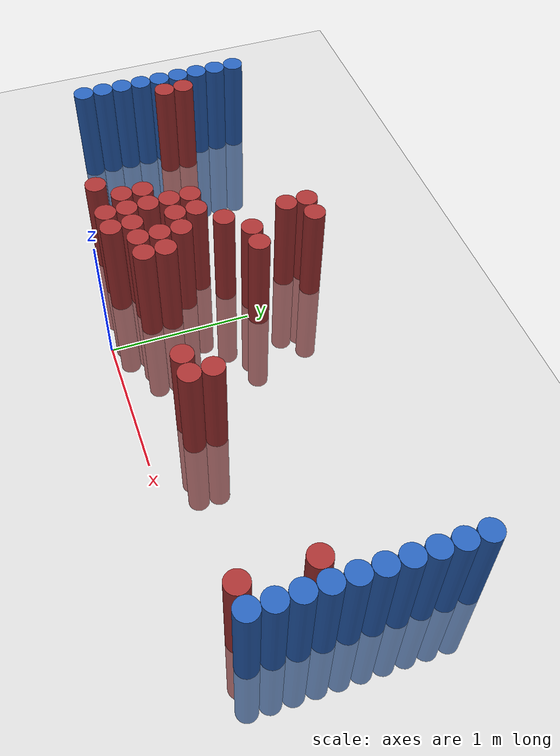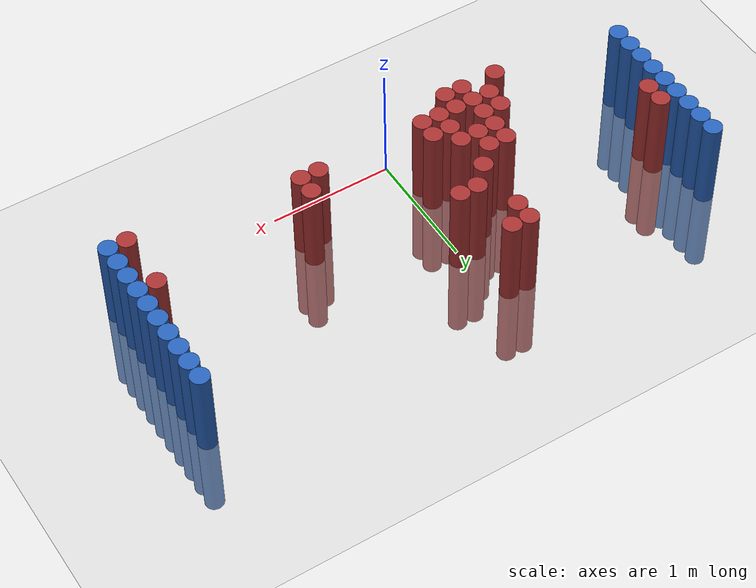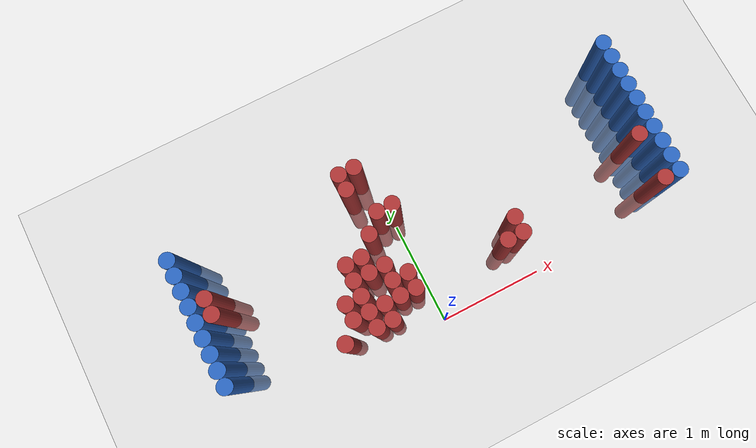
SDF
<sdf version="1.6">
 <world name="default">
  <model name="ground_plane">
   <static>1</static>
   <link name="link">
    <collision name="collision">
     <geometry><plane><normal>0 0 1</normal><size>100 100</size></plane></geometry>
     <surface><friction><ode><mu>100</mu><mu2>50</mu2></ode></friction></surface>
    </collision>
    <visual name="visual">
     <cast_shadows>0</cast_shadows>
     <geometry><plane><normal>0 0 1</normal><size>100 100</size></plane></geometry>
     <material>
      <script><uri>file://media/materials/scripts/gazebo.material</uri><name>Gazebo/Grey</name></script>
     </material>
    </visual>
   </link>
  </model>
  <model name="unit_cylinder_97">
   <static>1</static>
   <pose>-1.925000 0.325000 0.000000 0.000000 0.000000 0.000000</pose>
   <link name="link">
    <inertial>
     <mass>1</mass>
     <inertia><ixx>0.145833</ixx><ixy>0</ixy><ixz>0</ixz><iyy>0.145833</iyy><iyz>0</iyz><izz>0.125</izz></inertia>
    </inertial>
    <collision name="collision">
     <geometry><cylinder><radius>0.075000</radius><length>1.5</length></cylinder></geometry>
    </collision>
    <visual name="visual">
     <geometry><cylinder><radius>0.075000</radius><length>1.5</length></cylinder></geometry>
     <material>
      <ambient>0.152000 0.379000 0.720000 1</ambient>
      <diffuse>0.152000 0.379000 0.720000 1</diffuse>
     </material>
     <material>
      <script><name>Gazebo/Grey</name><uri>file://media/materials/scripts/gazebo.material</uri></script>
     </material>
    </visual>
   </link>
  </model>
  <model name="unit_cylinder_98">
   <static>1</static>
   <pose>-1.925000 0.475000 0.000000 0.000000 0.000000 0.000000</pose>
   <link name="link">
    <inertial>
     <mass>1</mass>
     <inertia><ixx>0.145833</ixx><ixy>0</ixy><ixz>0</ixz><iyy>0.145833</iyy><iyz>0</iyz><izz>0.125</izz></inertia>
    </inertial>
    <collision name="collision">
     <geometry><cylinder><radius>0.075000</radius><length>1.5</length></cylinder></geometry>
    </collision>
    <visual name="visual">
     <geometry><cylinder><radius>0.075000</radius><length>1.5</length></cylinder></geometry>
     <material>
      <ambient>0.152000 0.379000 0.720000 1</ambient>
      <diffuse>0.152000 0.379000 0.720000 1</diffuse>
     </material>
     <material>
      <script><name>Gazebo/Grey</name><uri>file://media/materials/scripts/gazebo.material</uri></script>
     </material>
    </visual>
   </link>
  </model>
  <model name="unit_cylinder_99">
   <static>1</static>
   <pose>-1.925000 0.625000 0.000000 0.000000 0.000000 0.000000</pose>
   <link name="link">
    <inertial>
     <mass>1</mass>
     <inertia><ixx>0.145833</ixx><ixy>0</ixy><ixz>0</ixz><iyy>0.145833</iyy><iyz>0</iyz><izz>0.125</izz></inertia>
    </inertial>
    <collision name="collision">
     <geometry><cylinder><radius>0.075000</radius><length>1.5</length></cylinder></geometry>
    </collision>
    <visual name="visual">
     <geometry><cylinder><radius>0.075000</radius><length>1.5</length></cylinder></geometry>
     <material>
      <ambient>0.152000 0.379000 0.720000 1</ambient>
      <diffuse>0.152000 0.379000 0.720000 1</diffuse>
     </material>
     <material>
      <script><name>Gazebo/Grey</name><uri>file://media/materials/scripts/gazebo.material</uri></script>
     </material>
    </visual>
   </link>
  </model>
  <model name="unit_cylinder_100">
   <static>1</static>
   <pose>-1.925000 0.775000 0.000000 0.000000 0.000000 0.000000</pose>
   <link name="link">
    <inertial>
     <mass>1</mass>
     <inertia><ixx>0.145833</ixx><ixy>0</ixy><ixz>0</ixz><iyy>0.145833</iyy><iyz>0</iyz><izz>0.125</izz></inertia>
    </inertial>
    <collision name="collision">
     <geometry><cylinder><radius>0.075000</radius><length>1.5</length></cylinder></geometry>
    </collision>
    <visual name="visual">
     <geometry><cylinder><radius>0.075000</radius><length>1.5</length></cylinder></geometry>
     <material>
      <ambient>0.152000 0.379000 0.720000 1</ambient>
      <diffuse>0.152000 0.379000 0.720000 1</diffuse>
     </material>
     <material>
      <script><name>Gazebo/Grey</name><uri>file://media/materials/scripts/gazebo.material</uri></script>
     </material>
    </visual>
   </link>
  </model>
  <model name="unit_cylinder_101">
   <static>1</static>
   <pose>-1.925000 0.925000 0.000000 0.000000 0.000000 0.000000</pose>
   <link name="link">
    <inertial>
     <mass>1</mass>
     <inertia><ixx>0.145833</ixx><ixy>0</ixy><ixz>0</ixz><iyy>0.145833</iyy><iyz>0</iyz><izz>0.125</izz></inertia>
    </inertial>
    <collision name="collision">
     <geometry><cylinder><radius>0.075000</radius><length>1.5</length></cylinder></geometry>
    </collision>
    <visual name="visual">
     <geometry><cylinder><radius>0.075000</radius><length>1.5</length></cylinder></geometry>
     <material>
      <ambient>0.152000 0.379000 0.720000 1</ambient>
      <diffuse>0.152000 0.379000 0.720000 1</diffuse>
     </material>
     <material>
      <script><name>Gazebo/Grey</name><uri>file://media/materials/scripts/gazebo.material</uri></script>
     </material>
    </visual>
   </link>
  </model>
  <model name="unit_cylinder_102">
   <static>1</static>
   <pose>-1.925000 1.075000 0.000000 0.000000 0.000000 0.000000</pose>
   <link name="link">
    <inertial>
     <mass>1</mass>
     <inertia><ixx>0.145833</ixx><ixy>0</ixy><ixz>0</ixz><iyy>0.145833</iyy><iyz>0</iyz><izz>0.125</izz></inertia>
    </inertial>
    <collision name="collision">
     <geometry><cylinder><radius>0.075000</radius><length>1.5</length></cylinder></geometry>
    </collision>
    <visual name="visual">
     <geometry><cylinder><radius>0.075000</radius><length>1.5</length></cylinder></geometry>
     <material>
      <ambient>0.152000 0.379000 0.720000 1</ambient>
      <diffuse>0.152000 0.379000 0.720000 1</diffuse>
     </material>
     <material>
      <script><name>Gazebo/Grey</name><uri>file://media/materials/scripts/gazebo.material</uri></script>
     </material>
    </visual>
   </link>
  </model>
  <model name="unit_cylinder_103">
   <static>1</static>
   <pose>-1.925000 1.225000 0.000000 0.000000 0.000000 0.000000</pose>
   <link name="link">
    <inertial>
     <mass>1</mass>
     <inertia><ixx>0.145833</ixx><ixy>0</ixy><ixz>0</ixz><iyy>0.145833</iyy><iyz>0</iyz><izz>0.125</izz></inertia>
    </inertial>
    <collision name="collision">
     <geometry><cylinder><radius>0.075000</radius><length>1.5</length></cylinder></geometry>
    </collision>
    <visual name="visual">
     <geometry><cylinder><radius>0.075000</radius><length>1.5</length></cylinder></geometry>
     <material>
      <ambient>0.152000 0.379000 0.720000 1</ambient>
      <diffuse>0.152000 0.379000 0.720000 1</diffuse>
     </material>
     <material>
      <script><name>Gazebo/Grey</name><uri>file://media/materials/scripts/gazebo.material</uri></script>
     </material>
    </visual>
   </link>
  </model>
  <model name="unit_cylinder_104">
   <static>1</static>
   <pose>-1.925000 1.375000 0.000000 0.000000 0.000000 0.000000</pose>
   <link name="link">
    <inertial>
     <mass>1</mass>
     <inertia><ixx>0.145833</ixx><ixy>0</ixy><ixz>0</ixz><iyy>0.145833</iyy><iyz>0</iyz><izz>0.125</izz></inertia>
    </inertial>
    <collision name="collision">
     <geometry><cylinder><radius>0.075000</radius><length>1.5</length></cylinder></geometry>
    </collision>
    <visual name="visual">
     <geometry><cylinder><radius>0.075000</radius><length>1.5</length></cylinder></geometry>
     <material>
      <ambient>0.152000 0.379000 0.720000 1</ambient>
      <diffuse>0.152000 0.379000 0.720000 1</diffuse>
     </material>
     <material>
      <script><name>Gazebo/Grey</name><uri>file://media/materials/scripts/gazebo.material</uri></script>
     </material>
    </visual>
   </link>
  </model>
  <model name="unit_cylinder_105">
   <static>1</static>
   <pose>-1.925000 1.525000 0.000000 0.000000 0.000000 0.000000</pose>
   <link name="link">
    <inertial>
     <mass>1</mass>
     <inertia><ixx>0.145833</ixx><ixy>0</ixy><ixz>0</ixz><iyy>0.145833</iyy><iyz>0</iyz><izz>0.125</izz></inertia>
    </inertial>
    <collision name="collision">
     <geometry><cylinder><radius>0.075000</radius><length>1.5</length></cylinder></geometry>
    </collision>
    <visual name="visual">
     <geometry><cylinder><radius>0.075000</radius><length>1.5</length></cylinder></geometry>
     <material>
      <ambient>0.152000 0.379000 0.720000 1</ambient>
      <diffuse>0.152000 0.379000 0.720000 1</diffuse>
     </material>
     <material>
      <script><name>Gazebo/Grey</name><uri>file://media/materials/scripts/gazebo.material</uri></script>
     </material>
    </visual>
   </link>
  </model>
  <model name="unit_cylinder_127">
   <static>1</static>
   <pose>-1.775000 0.925000 0.000000 0.000000 0.000000 0.000000</pose>
   <link name="link">
    <inertial>
     <mass>1</mass>
     <inertia><ixx>0.145833</ixx><ixy>0</ixy><ixz>0</ixz><iyy>0.145833</iyy><iyz>0</iyz><izz>0.125</izz></inertia>
    </inertial>
    <collision name="collision">
     <geometry><cylinder><radius>0.075000</radius><length>1.5</length></cylinder></geometry>
    </collision>
    <visual name="visual">
     <geometry><cylinder><radius>0.075000</radius><length>1.5</length></cylinder></geometry>
     <material>
      <ambient>0.648000 0.192000 0.192000 1</ambient>
      <diffuse>0.648000 0.192000 0.192000 1</diffuse>
     </material>
     <material>
      <script><name>Gazebo/Grey</name><uri>file://media/materials/scripts/gazebo.material</uri></script>
     </material>
    </visual>
   </link>
  </model>
  <model name="unit_cylinder_128">
   <static>1</static>
   <pose>-1.775000 1.075000 0.000000 0.000000 0.000000 0.000000</pose>
   <link name="link">
    <inertial>
     <mass>1</mass>
     <inertia><ixx>0.145833</ixx><ixy>0</ixy><ixz>0</ixz><iyy>0.145833</iyy><iyz>0</iyz><izz>0.125</izz></inertia>
    </inertial>
    <collision name="collision">
     <geometry><cylinder><radius>0.075000</radius><length>1.5</length></cylinder></geometry>
    </collision>
    <visual name="visual">
     <geometry><cylinder><radius>0.075000</radius><length>1.5</length></cylinder></geometry>
     <material>
      <ambient>0.648000 0.192000 0.192000 1</ambient>
      <diffuse>0.648000 0.192000 0.192000 1</diffuse>
     </material>
     <material>
      <script><name>Gazebo/Grey</name><uri>file://media/materials/scripts/gazebo.material</uri></script>
     </material>
    </visual>
   </link>
  </model>
  <model name="unit_cylinder_156">
   <static>1</static>
   <pose>-0.875000 0.175000 0.000000 0.000000 0.000000 0.000000</pose>
   <link name="link">
    <inertial>
     <mass>1</mass>
     <inertia><ixx>0.145833</ixx><ixy>0</ixy><ixz>0</ixz><iyy>0.145833</iyy><iyz>0</iyz><izz>0.125</izz></inertia>
    </inertial>
    <collision name="collision">
     <geometry><cylinder><radius>0.075000</radius><length>1.5</length></cylinder></geometry>
    </collision>
    <visual name="visual">
     <geometry><cylinder><radius>0.075000</radius><length>1.5</length></cylinder></geometry>
     <material>
      <ambient>0.648000 0.192000 0.192000 1</ambient>
      <diffuse>0.648000 0.192000 0.192000 1</diffuse>
     </material>
     <material>
      <script><name>Gazebo/Grey</name><uri>file://media/materials/scripts/gazebo.material</uri></script>
     </material>
    </visual>
   </link>
  </model>
  <model name="unit_cylinder_159">
   <static>1</static>
   <pose>-0.725000 0.325000 0.000000 0.000000 0.000000 0.000000</pose>
   <link name="link">
    <inertial>
     <mass>1</mass>
     <inertia><ixx>0.145833</ixx><ixy>0</ixy><ixz>0</ixz><iyy>0.145833</iyy><iyz>0</iyz><izz>0.125</izz></inertia>
    </inertial>
    <collision name="collision">
     <geometry><cylinder><radius>0.075000</radius><length>1.5</length></cylinder></geometry>
    </collision>
    <visual name="visual">
     <geometry><cylinder><radius>0.075000</radius><length>1.5</length></cylinder></geometry>
     <material>
      <ambient>0.648000 0.192000 0.192000 1</ambient>
      <diffuse>0.648000 0.192000 0.192000 1</diffuse>
     </material>
     <material>
      <script><name>Gazebo/Grey</name><uri>file://media/materials/scripts/gazebo.material</uri></script>
     </material>
    </visual>
   </link>
  </model>
  <model name="unit_cylinder_160">
   <static>1</static>
   <pose>-0.725000 0.475000 0.000000 0.000000 0.000000 0.000000</pose>
   <link name="link">
    <inertial>
     <mass>1</mass>
     <inertia><ixx>0.145833</ixx><ixy>0</ixy><ixz>0</ixz><iyy>0.145833</iyy><iyz>0</iyz><izz>0.125</izz></inertia>
    </inertial>
    <collision name="collision">
     <geometry><cylinder><radius>0.075000</radius><length>1.5</length></cylinder></geometry>
    </collision>
    <visual name="visual">
     <geometry><cylinder><radius>0.075000</radius><length>1.5</length></cylinder></geometry>
     <material>
      <ambient>0.648000 0.192000 0.192000 1</ambient>
      <diffuse>0.648000 0.192000 0.192000 1</diffuse>
     </material>
     <material>
      <script><name>Gazebo/Grey</name><uri>file://media/materials/scripts/gazebo.material</uri></script>
     </material>
    </visual>
   </link>
  </model>
  <model name="unit_cylinder_163">
   <static>1</static>
   <pose>-0.575000 0.175000 0.000000 0.000000 0.000000 0.000000</pose>
   <link name="link">
    <inertial>
     <mass>1</mass>
     <inertia><ixx>0.145833</ixx><ixy>0</ixy><ixz>0</ixz><iyy>0.145833</iyy><iyz>0</iyz><izz>0.125</izz></inertia>
    </inertial>
    <collision name="collision">
     <geometry><cylinder><radius>0.075000</radius><length>1.5</length></cylinder></geometry>
    </collision>
    <visual name="visual">
     <geometry><cylinder><radius>0.075000</radius><length>1.5</length></cylinder></geometry>
     <material>
      <ambient>0.648000 0.192000 0.192000 1</ambient>
      <diffuse>0.648000 0.192000 0.192000 1</diffuse>
     </material>
     <material>
      <script><name>Gazebo/Grey</name><uri>file://media/materials/scripts/gazebo.material</uri></script>
     </material>
    </visual>
   </link>
  </model>
  <model name="unit_cylinder_164">
   <static>1</static>
   <pose>-0.575000 0.325000 0.000000 0.000000 0.000000 0.000000</pose>
   <link name="link">
    <inertial>
     <mass>1</mass>
     <inertia><ixx>0.145833</ixx><ixy>0</ixy><ixz>0</ixz><iyy>0.145833</iyy><iyz>0</iyz><izz>0.125</izz></inertia>
    </inertial>
    <collision name="collision">
     <geometry><cylinder><radius>0.075000</radius><length>1.5</length></cylinder></geometry>
    </collision>
    <visual name="visual">
     <geometry><cylinder><radius>0.075000</radius><length>1.5</length></cylinder></geometry>
     <material>
      <ambient>0.648000 0.192000 0.192000 1</ambient>
      <diffuse>0.648000 0.192000 0.192000 1</diffuse>
     </material>
     <material>
      <script><name>Gazebo/Grey</name><uri>file://media/materials/scripts/gazebo.material</uri></script>
     </material>
    </visual>
   </link>
  </model>
  <model name="unit_cylinder_165">
   <static>1</static>
   <pose>-0.575000 0.475000 0.000000 0.000000 0.000000 0.000000</pose>
   <link name="link">
    <inertial>
     <mass>1</mass>
     <inertia><ixx>0.145833</ixx><ixy>0</ixy><ixz>0</ixz><iyy>0.145833</iyy><iyz>0</iyz><izz>0.125</izz></inertia>
    </inertial>
    <collision name="collision">
     <geometry><cylinder><radius>0.075000</radius><length>1.5</length></cylinder></geometry>
    </collision>
    <visual name="visual">
     <geometry><cylinder><radius>0.075000</radius><length>1.5</length></cylinder></geometry>
     <material>
      <ambient>0.648000 0.192000 0.192000 1</ambient>
      <diffuse>0.648000 0.192000 0.192000 1</diffuse>
     </material>
     <material>
      <script><name>Gazebo/Grey</name><uri>file://media/materials/scripts/gazebo.material</uri></script>
     </material>
    </visual>
   </link>
  </model>
  <model name="unit_cylinder_166">
   <static>1</static>
   <pose>-0.575000 0.625000 0.000000 0.000000 0.000000 0.000000</pose>
   <link name="link">
    <inertial>
     <mass>1</mass>
     <inertia><ixx>0.145833</ixx><ixy>0</ixy><ixz>0</ixz><iyy>0.145833</iyy><iyz>0</iyz><izz>0.125</izz></inertia>
    </inertial>
    <collision name="collision">
     <geometry><cylinder><radius>0.075000</radius><length>1.5</length></cylinder></geometry>
    </collision>
    <visual name="visual">
     <geometry><cylinder><radius>0.075000</radius><length>1.5</length></cylinder></geometry>
     <material>
      <ambient>0.648000 0.192000 0.192000 1</ambient>
      <diffuse>0.648000 0.192000 0.192000 1</diffuse>
     </material>
     <material>
      <script><name>Gazebo/Grey</name><uri>file://media/materials/scripts/gazebo.material</uri></script>
     </material>
    </visual>
   </link>
  </model>
  <model name="unit_cylinder_167">
   <static>1</static>
   <pose>-0.575000 0.775000 0.000000 0.000000 0.000000 0.000000</pose>
   <link name="link">
    <inertial>
     <mass>1</mass>
     <inertia><ixx>0.145833</ixx><ixy>0</ixy><ixz>0</ixz><iyy>0.145833</iyy><iyz>0</iyz><izz>0.125</izz></inertia>
    </inertial>
    <collision name="collision">
     <geometry><cylinder><radius>0.075000</radius><length>1.5</length></cylinder></geometry>
    </collision>
    <visual name="visual">
     <geometry><cylinder><radius>0.075000</radius><length>1.5</length></cylinder></geometry>
     <material>
      <ambient>0.648000 0.192000 0.192000 1</ambient>
      <diffuse>0.648000 0.192000 0.192000 1</diffuse>
     </material>
     <material>
      <script><name>Gazebo/Grey</name><uri>file://media/materials/scripts/gazebo.material</uri></script>
     </material>
    </visual>
   </link>
  </model>
  <model name="unit_cylinder_168">
   <static>1</static>
   <pose>-0.425000 0.175000 0.000000 0.000000 0.000000 0.000000</pose>
   <link name="link">
    <inertial>
     <mass>1</mass>
     <inertia><ixx>0.145833</ixx><ixy>0</ixy><ixz>0</ixz><iyy>0.145833</iyy><iyz>0</iyz><izz>0.125</izz></inertia>
    </inertial>
    <collision name="collision">
     <geometry><cylinder><radius>0.075000</radius><length>1.5</length></cylinder></geometry>
    </collision>
    <visual name="visual">
     <geometry><cylinder><radius>0.075000</radius><length>1.5</length></cylinder></geometry>
     <material>
      <ambient>0.648000 0.192000 0.192000 1</ambient>
      <diffuse>0.648000 0.192000 0.192000 1</diffuse>
     </material>
     <material>
      <script><name>Gazebo/Grey</name><uri>file://media/materials/scripts/gazebo.material</uri></script>
     </material>
    </visual>
   </link>
  </model>
  <model name="unit_cylinder_169">
   <static>1</static>
   <pose>-0.425000 0.325000 0.000000 0.000000 0.000000 0.000000</pose>
   <link name="link">
    <inertial>
     <mass>1</mass>
     <inertia><ixx>0.145833</ixx><ixy>0</ixy><ixz>0</ixz><iyy>0.145833</iyy><iyz>0</iyz><izz>0.125</izz></inertia>
    </inertial>
    <collision name="collision">
     <geometry><cylinder><radius>0.075000</radius><length>1.5</length></cylinder></geometry>
    </collision>
    <visual name="visual">
     <geometry><cylinder><radius>0.075000</radius><length>1.5</length></cylinder></geometry>
     <material>
      <ambient>0.648000 0.192000 0.192000 1</ambient>
      <diffuse>0.648000 0.192000 0.192000 1</diffuse>
     </material>
     <material>
      <script><name>Gazebo/Grey</name><uri>file://media/materials/scripts/gazebo.material</uri></script>
     </material>
    </visual>
   </link>
  </model>
  <model name="unit_cylinder_170">
   <static>1</static>
   <pose>-0.425000 0.625000 0.000000 0.000000 0.000000 0.000000</pose>
   <link name="link">
    <inertial>
     <mass>1</mass>
     <inertia><ixx>0.145833</ixx><ixy>0</ixy><ixz>0</ixz><iyy>0.145833</iyy><iyz>0</iyz><izz>0.125</izz></inertia>
    </inertial>
    <collision name="collision">
     <geometry><cylinder><radius>0.075000</radius><length>1.5</length></cylinder></geometry>
    </collision>
    <visual name="visual">
     <geometry><cylinder><radius>0.075000</radius><length>1.5</length></cylinder></geometry>
     <material>
      <ambient>0.648000 0.192000 0.192000 1</ambient>
      <diffuse>0.648000 0.192000 0.192000 1</diffuse>
     </material>
     <material>
      <script><name>Gazebo/Grey</name><uri>file://media/materials/scripts/gazebo.material</uri></script>
     </material>
    </visual>
   </link>
  </model>
  <model name="unit_cylinder_171">
   <static>1</static>
   <pose>-0.425000 0.775000 0.000000 0.000000 0.000000 0.000000</pose>
   <link name="link">
    <inertial>
     <mass>1</mass>
     <inertia><ixx>0.145833</ixx><ixy>0</ixy><ixz>0</ixz><iyy>0.145833</iyy><iyz>0</iyz><izz>0.125</izz></inertia>
    </inertial>
    <collision name="collision">
     <geometry><cylinder><radius>0.075000</radius><length>1.5</length></cylinder></geometry>
    </collision>
    <visual name="visual">
     <geometry><cylinder><radius>0.075000</radius><length>1.5</length></cylinder></geometry>
     <material>
      <ambient>0.648000 0.192000 0.192000 1</ambient>
      <diffuse>0.648000 0.192000 0.192000 1</diffuse>
     </material>
     <material>
      <script><name>Gazebo/Grey</name><uri>file://media/materials/scripts/gazebo.material</uri></script>
     </material>
    </visual>
   </link>
  </model>
  <model name="unit_cylinder_172">
   <static>1</static>
   <pose>-0.275000 0.325000 0.000000 0.000000 0.000000 0.000000</pose>
   <link name="link">
    <inertial>
     <mass>1</mass>
     <inertia><ixx>0.145833</ixx><ixy>0</ixy><ixz>0</ixz><iyy>0.145833</iyy><iyz>0</iyz><izz>0.125</izz></inertia>
    </inertial>
    <collision name="collision">
     <geometry><cylinder><radius>0.075000</radius><length>1.5</length></cylinder></geometry>
    </collision>
    <visual name="visual">
     <geometry><cylinder><radius>0.075000</radius><length>1.5</length></cylinder></geometry>
     <material>
      <ambient>0.648000 0.192000 0.192000 1</ambient>
      <diffuse>0.648000 0.192000 0.192000 1</diffuse>
     </material>
     <material>
      <script><name>Gazebo/Grey</name><uri>file://media/materials/scripts/gazebo.material</uri></script>
     </material>
    </visual>
   </link>
  </model>
  <model name="unit_cylinder_173">
   <static>1</static>
   <pose>-0.275000 0.475000 0.000000 0.000000 0.000000 0.000000</pose>
   <link name="link">
    <inertial>
     <mass>1</mass>
     <inertia><ixx>0.145833</ixx><ixy>0</ixy><ixz>0</ixz><iyy>0.145833</iyy><iyz>0</iyz><izz>0.125</izz></inertia>
    </inertial>
    <collision name="collision">
     <geometry><cylinder><radius>0.075000</radius><length>1.5</length></cylinder></geometry>
    </collision>
    <visual name="visual">
     <geometry><cylinder><radius>0.075000</radius><length>1.5</length></cylinder></geometry>
     <material>
      <ambient>0.648000 0.192000 0.192000 1</ambient>
      <diffuse>0.648000 0.192000 0.192000 1</diffuse>
     </material>
     <material>
      <script><name>Gazebo/Grey</name><uri>file://media/materials/scripts/gazebo.material</uri></script>
     </material>
    </visual>
   </link>
  </model>
  <model name="unit_cylinder_174">
   <static>1</static>
   <pose>-0.275000 0.625000 0.000000 0.000000 0.000000 0.000000</pose>
   <link name="link">
    <inertial>
     <mass>1</mass>
     <inertia><ixx>0.145833</ixx><ixy>0</ixy><ixz>0</ixz><iyy>0.145833</iyy><iyz>0</iyz><izz>0.125</izz></inertia>
    </inertial>
    <collision name="collision">
     <geometry><cylinder><radius>0.075000</radius><length>1.5</length></cylinder></geometry>
    </collision>
    <visual name="visual">
     <geometry><cylinder><radius>0.075000</radius><length>1.5</length></cylinder></geometry>
     <material>
      <ambient>0.648000 0.192000 0.192000 1</ambient>
      <diffuse>0.648000 0.192000 0.192000 1</diffuse>
     </material>
     <material>
      <script><name>Gazebo/Grey</name><uri>file://media/materials/scripts/gazebo.material</uri></script>
     </material>
    </visual>
   </link>
  </model>
  <model name="unit_cylinder_175">
   <static>1</static>
   <pose>-0.275000 0.925000 0.000000 0.000000 0.000000 0.000000</pose>
   <link name="link">
    <inertial>
     <mass>1</mass>
     <inertia><ixx>0.145833</ixx><ixy>0</ixy><ixz>0</ixz><iyy>0.145833</iyy><iyz>0</iyz><izz>0.125</izz></inertia>
    </inertial>
    <collision name="collision">
     <geometry><cylinder><radius>0.075000</radius><length>1.5</length></cylinder></geometry>
    </collision>
    <visual name="visual">
     <geometry><cylinder><radius>0.075000</radius><length>1.5</length></cylinder></geometry>
     <material>
      <ambient>0.648000 0.192000 0.192000 1</ambient>
      <diffuse>0.648000 0.192000 0.192000 1</diffuse>
     </material>
     <material>
      <script><name>Gazebo/Grey</name><uri>file://media/materials/scripts/gazebo.material</uri></script>
     </material>
    </visual>
   </link>
  </model>
  <model name="unit_cylinder_176">
   <static>1</static>
   <pose>-0.275000 1.375000 0.000000 0.000000 0.000000 0.000000</pose>
   <link name="link">
    <inertial>
     <mass>1</mass>
     <inertia><ixx>0.145833</ixx><ixy>0</ixy><ixz>0</ixz><iyy>0.145833</iyy><iyz>0</iyz><izz>0.125</izz></inertia>
    </inertial>
    <collision name="collision">
     <geometry><cylinder><radius>0.075000</radius><length>1.5</length></cylinder></geometry>
    </collision>
    <visual name="visual">
     <geometry><cylinder><radius>0.075000</radius><length>1.5</length></cylinder></geometry>
     <material>
      <ambient>0.648000 0.192000 0.192000 1</ambient>
      <diffuse>0.648000 0.192000 0.192000 1</diffuse>
     </material>
     <material>
      <script><name>Gazebo/Grey</name><uri>file://media/materials/scripts/gazebo.material</uri></script>
     </material>
    </visual>
   </link>
  </model>
  <model name="unit_cylinder_177">
   <static>1</static>
   <pose>-0.275000 1.525000 0.000000 0.000000 0.000000 0.000000</pose>
   <link name="link">
    <inertial>
     <mass>1</mass>
     <inertia><ixx>0.145833</ixx><ixy>0</ixy><ixz>0</ixz><iyy>0.145833</iyy><iyz>0</iyz><izz>0.125</izz></inertia>
    </inertial>
    <collision name="collision">
     <geometry><cylinder><radius>0.075000</radius><length>1.5</length></cylinder></geometry>
    </collision>
    <visual name="visual">
     <geometry><cylinder><radius>0.075000</radius><length>1.5</length></cylinder></geometry>
     <material>
      <ambient>0.648000 0.192000 0.192000 1</ambient>
      <diffuse>0.648000 0.192000 0.192000 1</diffuse>
     </material>
     <material>
      <script><name>Gazebo/Grey</name><uri>file://media/materials/scripts/gazebo.material</uri></script>
     </material>
    </visual>
   </link>
  </model>
  <model name="unit_cylinder_178">
   <static>1</static>
   <pose>-0.125000 0.325000 0.000000 0.000000 0.000000 0.000000</pose>
   <link name="link">
    <inertial>
     <mass>1</mass>
     <inertia><ixx>0.145833</ixx><ixy>0</ixy><ixz>0</ixz><iyy>0.145833</iyy><iyz>0</iyz><izz>0.125</izz></inertia>
    </inertial>
    <collision name="collision">
     <geometry><cylinder><radius>0.075000</radius><length>1.5</length></cylinder></geometry>
    </collision>
    <visual name="visual">
     <geometry><cylinder><radius>0.075000</radius><length>1.5</length></cylinder></geometry>
     <material>
      <ambient>0.648000 0.192000 0.192000 1</ambient>
      <diffuse>0.648000 0.192000 0.192000 1</diffuse>
     </material>
     <material>
      <script><name>Gazebo/Grey</name><uri>file://media/materials/scripts/gazebo.material</uri></script>
     </material>
    </visual>
   </link>
  </model>
  <model name="unit_cylinder_179">
   <static>1</static>
   <pose>-0.125000 0.475000 0.000000 0.000000 0.000000 0.000000</pose>
   <link name="link">
    <inertial>
     <mass>1</mass>
     <inertia><ixx>0.145833</ixx><ixy>0</ixy><ixz>0</ixz><iyy>0.145833</iyy><iyz>0</iyz><izz>0.125</izz></inertia>
    </inertial>
    <collision name="collision">
     <geometry><cylinder><radius>0.075000</radius><length>1.5</length></cylinder></geometry>
    </collision>
    <visual name="visual">
     <geometry><cylinder><radius>0.075000</radius><length>1.5</length></cylinder></geometry>
     <material>
      <ambient>0.648000 0.192000 0.192000 1</ambient>
      <diffuse>0.648000 0.192000 0.192000 1</diffuse>
     </material>
     <material>
      <script><name>Gazebo/Grey</name><uri>file://media/materials/scripts/gazebo.material</uri></script>
     </material>
    </visual>
   </link>
  </model>
  <model name="unit_cylinder_180">
   <static>1</static>
   <pose>-0.125000 1.075000 0.000000 0.000000 0.000000 0.000000</pose>
   <link name="link">
    <inertial>
     <mass>1</mass>
     <inertia><ixx>0.145833</ixx><ixy>0</ixy><ixz>0</ixz><iyy>0.145833</iyy><iyz>0</iyz><izz>0.125</izz></inertia>
    </inertial>
    <collision name="collision">
     <geometry><cylinder><radius>0.075000</radius><length>1.5</length></cylinder></geometry>
    </collision>
    <visual name="visual">
     <geometry><cylinder><radius>0.075000</radius><length>1.5</length></cylinder></geometry>
     <material>
      <ambient>0.648000 0.192000 0.192000 1</ambient>
      <diffuse>0.648000 0.192000 0.192000 1</diffuse>
     </material>
     <material>
      <script><name>Gazebo/Grey</name><uri>file://media/materials/scripts/gazebo.material</uri></script>
     </material>
    </visual>
   </link>
  </model>
  <model name="unit_cylinder_181">
   <static>1</static>
   <pose>-0.125000 1.525000 0.000000 0.000000 0.000000 0.000000</pose>
   <link name="link">
    <inertial>
     <mass>1</mass>
     <inertia><ixx>0.145833</ixx><ixy>0</ixy><ixz>0</ixz><iyy>0.145833</iyy><iyz>0</iyz><izz>0.125</izz></inertia>
    </inertial>
    <collision name="collision">
     <geometry><cylinder><radius>0.075000</radius><length>1.5</length></cylinder></geometry>
    </collision>
    <visual name="visual">
     <geometry><cylinder><radius>0.075000</radius><length>1.5</length></cylinder></geometry>
     <material>
      <ambient>0.648000 0.192000 0.192000 1</ambient>
      <diffuse>0.648000 0.192000 0.192000 1</diffuse>
     </material>
     <material>
      <script><name>Gazebo/Grey</name><uri>file://media/materials/scripts/gazebo.material</uri></script>
     </material>
    </visual>
   </link>
  </model>
  <model name="unit_cylinder_184">
   <static>1</static>
   <pose>0.025000 1.075000 0.000000 0.000000 0.000000 0.000000</pose>
   <link name="link">
    <inertial>
     <mass>1</mass>
     <inertia><ixx>0.145833</ixx><ixy>0</ixy><ixz>0</ixz><iyy>0.145833</iyy><iyz>0</iyz><izz>0.125</izz></inertia>
    </inertial>
    <collision name="collision">
     <geometry><cylinder><radius>0.075000</radius><length>1.5</length></cylinder></geometry>
    </collision>
    <visual name="visual">
     <geometry><cylinder><radius>0.075000</radius><length>1.5</length></cylinder></geometry>
     <material>
      <ambient>0.648000 0.192000 0.192000 1</ambient>
      <diffuse>0.648000 0.192000 0.192000 1</diffuse>
     </material>
     <material>
      <script><name>Gazebo/Grey</name><uri>file://media/materials/scripts/gazebo.material</uri></script>
     </material>
    </visual>
   </link>
  </model>
  <model name="unit_cylinder_191">
   <static>1</static>
   <pose>0.775000 0.325000 0.000000 0.000000 0.000000 0.000000</pose>
   <link name="link">
    <inertial>
     <mass>1</mass>
     <inertia><ixx>0.145833</ixx><ixy>0</ixy><ixz>0</ixz><iyy>0.145833</iyy><iyz>0</iyz><izz>0.125</izz></inertia>
    </inertial>
    <collision name="collision">
     <geometry><cylinder><radius>0.075000</radius><length>1.5</length></cylinder></geometry>
    </collision>
    <visual name="visual">
     <geometry><cylinder><radius>0.075000</radius><length>1.5</length></cylinder></geometry>
     <material>
      <ambient>0.648000 0.192000 0.192000 1</ambient>
      <diffuse>0.648000 0.192000 0.192000 1</diffuse>
     </material>
     <material>
      <script><name>Gazebo/Grey</name><uri>file://media/materials/scripts/gazebo.material</uri></script>
     </material>
    </visual>
   </link>
  </model>
  <model name="unit_cylinder_194">
   <static>1</static>
   <pose>0.925000 0.325000 0.000000 0.000000 0.000000 0.000000</pose>
   <link name="link">
    <inertial>
     <mass>1</mass>
     <inertia><ixx>0.145833</ixx><ixy>0</ixy><ixz>0</ixz><iyy>0.145833</iyy><iyz>0</iyz><izz>0.125</izz></inertia>
    </inertial>
    <collision name="collision">
     <geometry><cylinder><radius>0.075000</radius><length>1.5</length></cylinder></geometry>
    </collision>
    <visual name="visual">
     <geometry><cylinder><radius>0.075000</radius><length>1.5</length></cylinder></geometry>
     <material>
      <ambient>0.648000 0.192000 0.192000 1</ambient>
      <diffuse>0.648000 0.192000 0.192000 1</diffuse>
     </material>
     <material>
      <script><name>Gazebo/Grey</name><uri>file://media/materials/scripts/gazebo.material</uri></script>
     </material>
    </visual>
   </link>
  </model>
  <model name="unit_cylinder_195">
   <static>1</static>
   <pose>0.925000 0.475000 0.000000 0.000000 0.000000 0.000000</pose>
   <link name="link">
    <inertial>
     <mass>1</mass>
     <inertia><ixx>0.145833</ixx><ixy>0</ixy><ixz>0</ixz><iyy>0.145833</iyy><iyz>0</iyz><izz>0.125</izz></inertia>
    </inertial>
    <collision name="collision">
     <geometry><cylinder><radius>0.075000</radius><length>1.5</length></cylinder></geometry>
    </collision>
    <visual name="visual">
     <geometry><cylinder><radius>0.075000</radius><length>1.5</length></cylinder></geometry>
     <material>
      <ambient>0.648000 0.192000 0.192000 1</ambient>
      <diffuse>0.648000 0.192000 0.192000 1</diffuse>
     </material>
     <material>
      <script><name>Gazebo/Grey</name><uri>file://media/materials/scripts/gazebo.material</uri></script>
     </material>
    </visual>
   </link>
  </model>
  <model name="unit_cylinder_205">
   <static>1</static>
   <pose>2.275000 0.175000 0.000000 0.000000 0.000000 0.000000</pose>
   <link name="link">
    <inertial>
     <mass>1</mass>
     <inertia><ixx>0.145833</ixx><ixy>0</ixy><ixz>0</ixz><iyy>0.145833</iyy><iyz>0</iyz><izz>0.125</izz></inertia>
    </inertial>
    <collision name="collision">
     <geometry><cylinder><radius>0.075000</radius><length>1.5</length></cylinder></geometry>
    </collision>
    <visual name="visual">
     <geometry><cylinder><radius>0.075000</radius><length>1.5</length></cylinder></geometry>
     <material>
      <ambient>0.648000 0.192000 0.192000 1</ambient>
      <diffuse>0.648000 0.192000 0.192000 1</diffuse>
     </material>
     <material>
      <script><name>Gazebo/Grey</name><uri>file://media/materials/scripts/gazebo.material</uri></script>
     </material>
    </visual>
   </link>
  </model>
  <model name="unit_cylinder_206">
   <static>1</static>
   <pose>2.275000 0.625000 0.000000 0.000000 0.000000 0.000000</pose>
   <link name="link">
    <inertial>
     <mass>1</mass>
     <inertia><ixx>0.145833</ixx><ixy>0</ixy><ixz>0</ixz><iyy>0.145833</iyy><iyz>0</iyz><izz>0.125</izz></inertia>
    </inertial>
    <collision name="collision">
     <geometry><cylinder><radius>0.075000</radius><length>1.5</length></cylinder></geometry>
    </collision>
    <visual name="visual">
     <geometry><cylinder><radius>0.075000</radius><length>1.5</length></cylinder></geometry>
     <material>
      <ambient>0.648000 0.192000 0.192000 1</ambient>
      <diffuse>0.648000 0.192000 0.192000 1</diffuse>
     </material>
     <material>
      <script><name>Gazebo/Grey</name><uri>file://media/materials/scripts/gazebo.material</uri></script>
     </material>
    </visual>
   </link>
  </model>
  <model name="unit_cylinder_214">
   <static>1</static>
   <pose>2.425000 0.175000 0.000000 0.000000 0.000000 0.000000</pose>
   <link name="link">
    <inertial>
     <mass>1</mass>
     <inertia><ixx>0.145833</ixx><ixy>0</ixy><ixz>0</ixz><iyy>0.145833</iyy><iyz>0</iyz><izz>0.125</izz></inertia>
    </inertial>
    <collision name="collision">
     <geometry><cylinder><radius>0.075000</radius><length>1.5</length></cylinder></geometry>
    </collision>
    <visual name="visual">
     <geometry><cylinder><radius>0.075000</radius><length>1.5</length></cylinder></geometry>
     <material>
      <ambient>0.152000 0.379000 0.720000 1</ambient>
      <diffuse>0.152000 0.379000 0.720000 1</diffuse>
     </material>
     <material>
      <script><name>Gazebo/Grey</name><uri>file://media/materials/scripts/gazebo.material</uri></script>
     </material>
    </visual>
   </link>
  </model>
  <model name="unit_cylinder_215">
   <static>1</static>
   <pose>2.425000 0.325000 0.000000 0.000000 0.000000 0.000000</pose>
   <link name="link">
    <inertial>
     <mass>1</mass>
     <inertia><ixx>0.145833</ixx><ixy>0</ixy><ixz>0</ixz><iyy>0.145833</iyy><iyz>0</iyz><izz>0.125</izz></inertia>
    </inertial>
    <collision name="collision">
     <geometry><cylinder><radius>0.075000</radius><length>1.5</length></cylinder></geometry>
    </collision>
    <visual name="visual">
     <geometry><cylinder><radius>0.075000</radius><length>1.5</length></cylinder></geometry>
     <material>
      <ambient>0.152000 0.379000 0.720000 1</ambient>
      <diffuse>0.152000 0.379000 0.720000 1</diffuse>
     </material>
     <material>
      <script><name>Gazebo/Grey</name><uri>file://media/materials/scripts/gazebo.material</uri></script>
     </material>
    </visual>
   </link>
  </model>
  <model name="unit_cylinder_216">
   <static>1</static>
   <pose>2.425000 0.475000 0.000000 0.000000 0.000000 0.000000</pose>
   <link name="link">
    <inertial>
     <mass>1</mass>
     <inertia><ixx>0.145833</ixx><ixy>0</ixy><ixz>0</ixz><iyy>0.145833</iyy><iyz>0</iyz><izz>0.125</izz></inertia>
    </inertial>
    <collision name="collision">
     <geometry><cylinder><radius>0.075000</radius><length>1.5</length></cylinder></geometry>
    </collision>
    <visual name="visual">
     <geometry><cylinder><radius>0.075000</radius><length>1.5</length></cylinder></geometry>
     <material>
      <ambient>0.152000 0.379000 0.720000 1</ambient>
      <diffuse>0.152000 0.379000 0.720000 1</diffuse>
     </material>
     <material>
      <script><name>Gazebo/Grey</name><uri>file://media/materials/scripts/gazebo.material</uri></script>
     </material>
    </visual>
   </link>
  </model>
  <model name="unit_cylinder_217">
   <static>1</static>
   <pose>2.425000 0.625000 0.000000 0.000000 0.000000 0.000000</pose>
   <link name="link">
    <inertial>
     <mass>1</mass>
     <inertia><ixx>0.145833</ixx><ixy>0</ixy><ixz>0</ixz><iyy>0.145833</iyy><iyz>0</iyz><izz>0.125</izz></inertia>
    </inertial>
    <collision name="collision">
     <geometry><cylinder><radius>0.075000</radius><length>1.5</length></cylinder></geometry>
    </collision>
    <visual name="visual">
     <geometry><cylinder><radius>0.075000</radius><length>1.5</length></cylinder></geometry>
     <material>
      <ambient>0.152000 0.379000 0.720000 1</ambient>
      <diffuse>0.152000 0.379000 0.720000 1</diffuse>
     </material>
     <material>
      <script><name>Gazebo/Grey</name><uri>file://media/materials/scripts/gazebo.material</uri></script>
     </material>
    </visual>
   </link>
  </model>
  <model name="unit_cylinder_218">
   <static>1</static>
   <pose>2.425000 0.775000 0.000000 0.000000 0.000000 0.000000</pose>
   <link name="link">
    <inertial>
     <mass>1</mass>
     <inertia><ixx>0.145833</ixx><ixy>0</ixy><ixz>0</ixz><iyy>0.145833</iyy><iyz>0</iyz><izz>0.125</izz></inertia>
    </inertial>
    <collision name="collision">
     <geometry><cylinder><radius>0.075000</radius><length>1.5</length></cylinder></geometry>
    </collision>
    <visual name="visual">
     <geometry><cylinder><radius>0.075000</radius><length>1.5</length></cylinder></geometry>
     <material>
      <ambient>0.152000 0.379000 0.720000 1</ambient>
      <diffuse>0.152000 0.379000 0.720000 1</diffuse>
     </material>
     <material>
      <script><name>Gazebo/Grey</name><uri>file://media/materials/scripts/gazebo.material</uri></script>
     </material>
    </visual>
   </link>
  </model>
  <model name="unit_cylinder_219">
   <static>1</static>
   <pose>2.425000 0.925000 0.000000 0.000000 0.000000 0.000000</pose>
   <link name="link">
    <inertial>
     <mass>1</mass>
     <inertia><ixx>0.145833</ixx><ixy>0</ixy><ixz>0</ixz><iyy>0.145833</iyy><iyz>0</iyz><izz>0.125</izz></inertia>
    </inertial>
    <collision name="collision">
     <geometry><cylinder><radius>0.075000</radius><length>1.5</length></cylinder></geometry>
    </collision>
    <visual name="visual">
     <geometry><cylinder><radius>0.075000</radius><length>1.5</length></cylinder></geometry>
     <material>
      <ambient>0.152000 0.379000 0.720000 1</ambient>
      <diffuse>0.152000 0.379000 0.720000 1</diffuse>
     </material>
     <material>
      <script><name>Gazebo/Grey</name><uri>file://media/materials/scripts/gazebo.material</uri></script>
     </material>
    </visual>
   </link>
  </model>
  <model name="unit_cylinder_220">
   <static>1</static>
   <pose>2.425000 1.075000 0.000000 0.000000 0.000000 0.000000</pose>
   <link name="link">
    <inertial>
     <mass>1</mass>
     <inertia><ixx>0.145833</ixx><ixy>0</ixy><ixz>0</ixz><iyy>0.145833</iyy><iyz>0</iyz><izz>0.125</izz></inertia>
    </inertial>
    <collision name="collision">
     <geometry><cylinder><radius>0.075000</radius><length>1.5</length></cylinder></geometry>
    </collision>
    <visual name="visual">
     <geometry><cylinder><radius>0.075000</radius><length>1.5</length></cylinder></geometry>
     <material>
      <ambient>0.152000 0.379000 0.720000 1</ambient>
      <diffuse>0.152000 0.379000 0.720000 1</diffuse>
     </material>
     <material>
      <script><name>Gazebo/Grey</name><uri>file://media/materials/scripts/gazebo.material</uri></script>
     </material>
    </visual>
   </link>
  </model>
  <model name="unit_cylinder_221">
   <static>1</static>
   <pose>2.425000 1.225000 0.000000 0.000000 0.000000 0.000000</pose>
   <link name="link">
    <inertial>
     <mass>1</mass>
     <inertia><ixx>0.145833</ixx><ixy>0</ixy><ixz>0</ixz><iyy>0.145833</iyy><iyz>0</iyz><izz>0.125</izz></inertia>
    </inertial>
    <collision name="collision">
     <geometry><cylinder><radius>0.075000</radius><length>1.5</length></cylinder></geometry>
    </collision>
    <visual name="visual">
     <geometry><cylinder><radius>0.075000</radius><length>1.5</length></cylinder></geometry>
     <material>
      <ambient>0.152000 0.379000 0.720000 1</ambient>
      <diffuse>0.152000 0.379000 0.720000 1</diffuse>
     </material>
     <material>
      <script><name>Gazebo/Grey</name><uri>file://media/materials/scripts/gazebo.material</uri></script>
     </material>
    </visual>
   </link>
  </model>
  <model name="unit_cylinder_222">
   <static>1</static>
   <pose>2.425000 1.375000 0.000000 0.000000 0.000000 0.000000</pose>
   <link name="link">
    <inertial>
     <mass>1</mass>
     <inertia><ixx>0.145833</ixx><ixy>0</ixy><ixz>0</ixz><iyy>0.145833</iyy><iyz>0</iyz><izz>0.125</izz></inertia>
    </inertial>
    <collision name="collision">
     <geometry><cylinder><radius>0.075000</radius><length>1.5</length></cylinder></geometry>
    </collision>
    <visual name="visual">
     <geometry><cylinder><radius>0.075000</radius><length>1.5</length></cylinder></geometry>
     <material>
      <ambient>0.152000 0.379000 0.720000 1</ambient>
      <diffuse>0.152000 0.379000 0.720000 1</diffuse>
     </material>
     <material>
      <script><name>Gazebo/Grey</name><uri>file://media/materials/scripts/gazebo.material</uri></script>
     </material>
    </visual>
   </link>
  </model>
  <model name="unit_cylinder_223">
   <static>1</static>
   <pose>2.425000 1.525000 0.000000 0.000000 0.000000 0.000000</pose>
   <link name="link">
    <inertial>
     <mass>1</mass>
     <inertia><ixx>0.145833</ixx><ixy>0</ixy><ixz>0</ixz><iyy>0.145833</iyy><iyz>0</iyz><izz>0.125</izz></inertia>
    </inertial>
    <collision name="collision">
     <geometry><cylinder><radius>0.075000</radius><length>1.5</length></cylinder></geometry>
    </collision>
    <visual name="visual">
     <geometry><cylinder><radius>0.075000</radius><length>1.5</length></cylinder></geometry>
     <material>
      <ambient>0.152000 0.379000 0.720000 1</ambient>
      <diffuse>0.152000 0.379000 0.720000 1</diffuse>
     </material>
     <material>
      <script><name>Gazebo/Grey</name><uri>file://media/materials/scripts/gazebo.material</uri></script>
     </material>
    </visual>
   </link>
  </model>
 </world>
</sdf>
